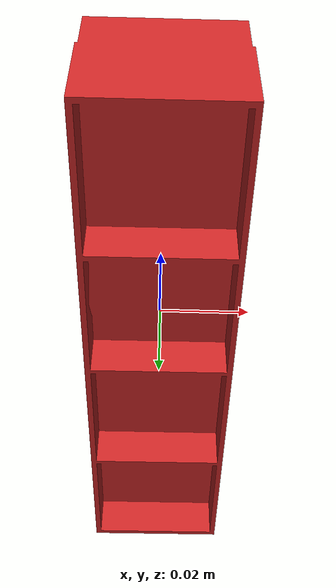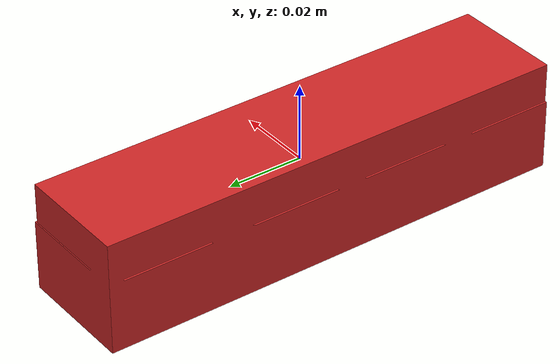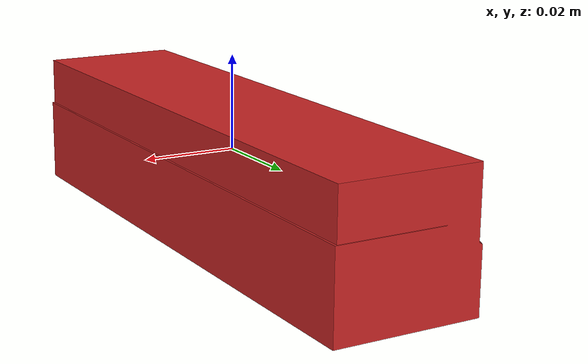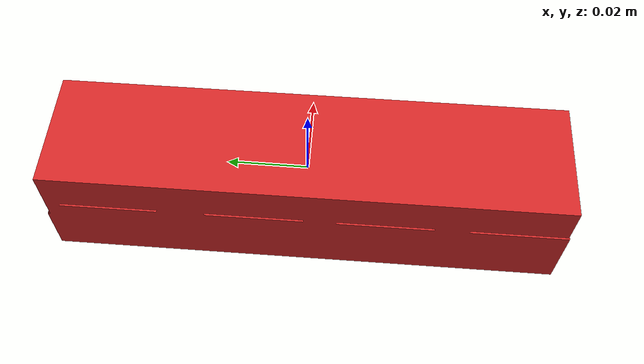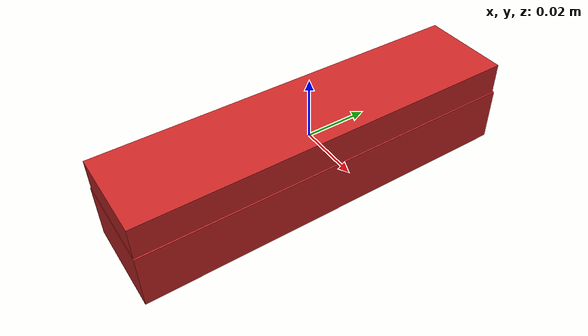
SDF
<?xml version="1.0"?>
<sdf version="1.4">
  <model name="BARRA">
    <static>true</static>
    <link name="link">
      <pose>0 0 0 0 0 0</pose>
      <inertial>
        <pose>0e-02 -0.013e-02 0.028e-02</pose>
        <mass>19.29e-6</mass>
        <inertia>
          <ixx>304.1e-10</ixx>
          <ixy>0.0001e-10</ixy>
          <ixz>0.0004e-10</ixz>
          <iyy>45.92e-10</iyy>
          <iyz>-0.267e-10</iyz>
          <izz>303.17e-10</izz>
        </inertia>
      </inertial>

      <visual name="visual">
        <geometry>
          <mesh>
            <uri>model://BARRA/meshes/BARRA.stl</uri>
          </mesh>
        </geometry>
        <material>
          <script>
            <uri>file://media/materials/scripts/gazebo.material</uri>
            <name>Gazebo/Red</name>
            <scale>1 1 1</scale>
          </script>
        </material>
      </visual>

      <collision name="collision">
        <geometry>
          <mesh>
            <uri>model://BARRA/meshes/BARRA.stl</uri>
            <scale>1 1 1</scale>
          </mesh>
        </geometry>
      </collision>
    </link>
  </model>
</sdf>
